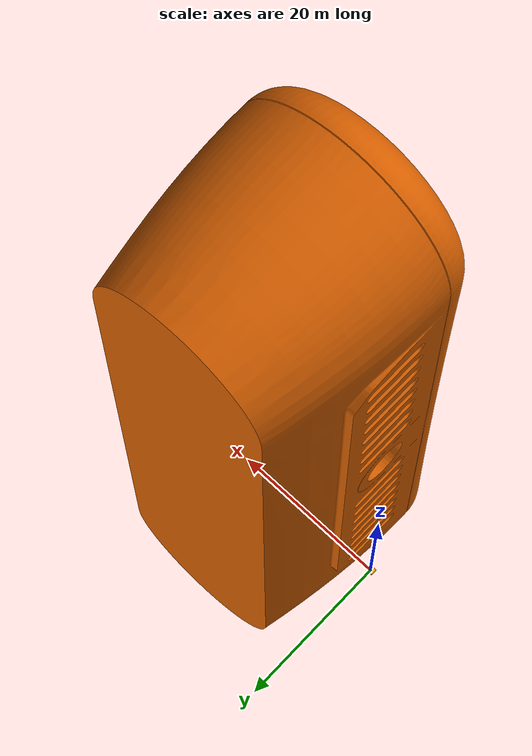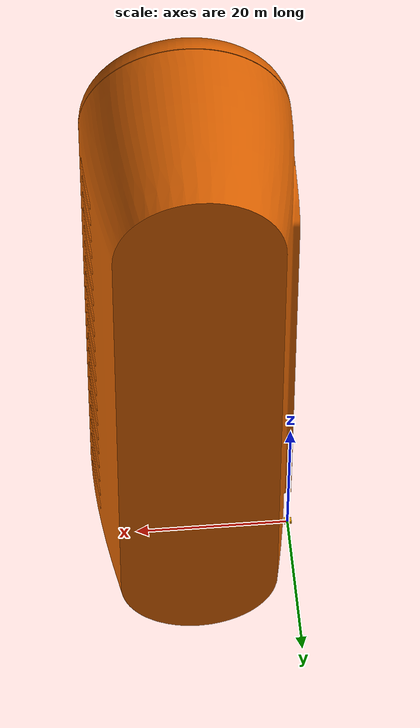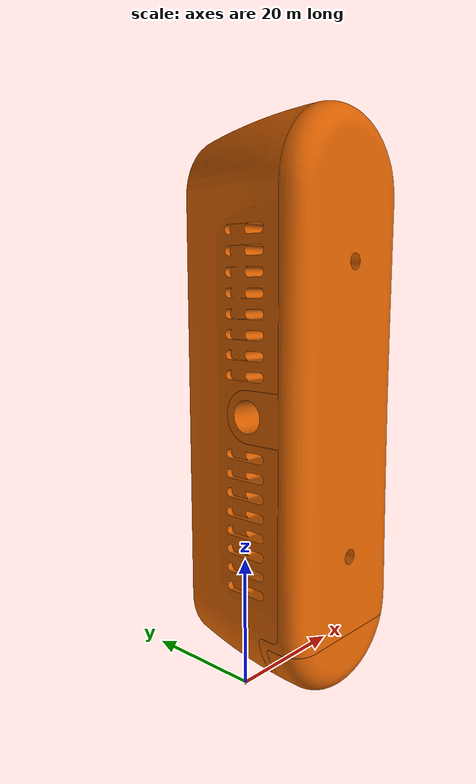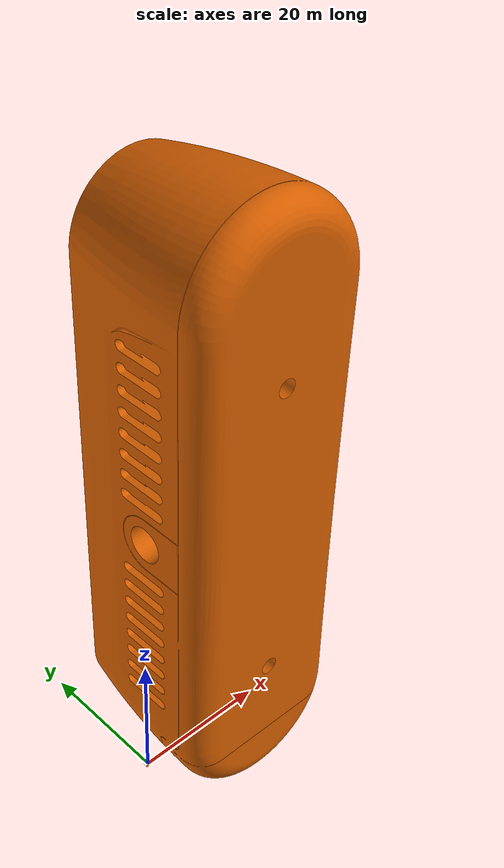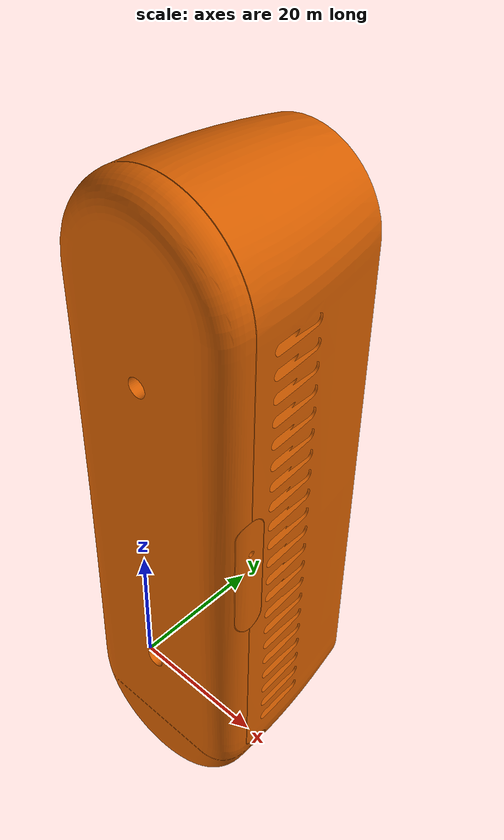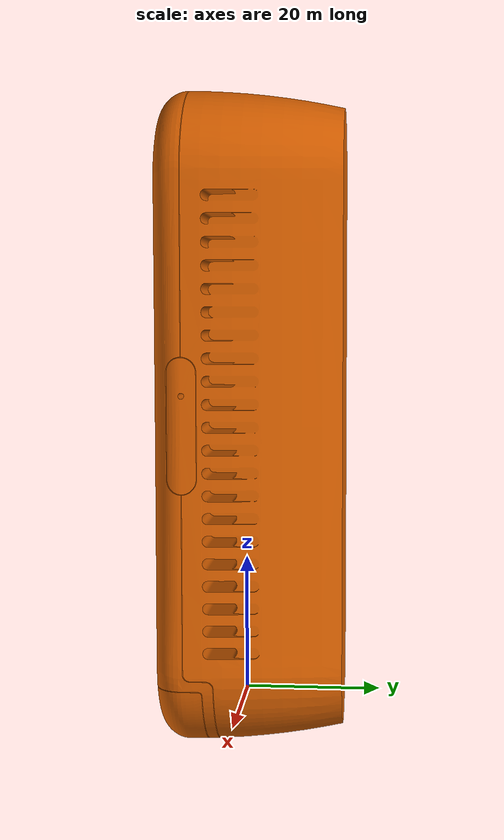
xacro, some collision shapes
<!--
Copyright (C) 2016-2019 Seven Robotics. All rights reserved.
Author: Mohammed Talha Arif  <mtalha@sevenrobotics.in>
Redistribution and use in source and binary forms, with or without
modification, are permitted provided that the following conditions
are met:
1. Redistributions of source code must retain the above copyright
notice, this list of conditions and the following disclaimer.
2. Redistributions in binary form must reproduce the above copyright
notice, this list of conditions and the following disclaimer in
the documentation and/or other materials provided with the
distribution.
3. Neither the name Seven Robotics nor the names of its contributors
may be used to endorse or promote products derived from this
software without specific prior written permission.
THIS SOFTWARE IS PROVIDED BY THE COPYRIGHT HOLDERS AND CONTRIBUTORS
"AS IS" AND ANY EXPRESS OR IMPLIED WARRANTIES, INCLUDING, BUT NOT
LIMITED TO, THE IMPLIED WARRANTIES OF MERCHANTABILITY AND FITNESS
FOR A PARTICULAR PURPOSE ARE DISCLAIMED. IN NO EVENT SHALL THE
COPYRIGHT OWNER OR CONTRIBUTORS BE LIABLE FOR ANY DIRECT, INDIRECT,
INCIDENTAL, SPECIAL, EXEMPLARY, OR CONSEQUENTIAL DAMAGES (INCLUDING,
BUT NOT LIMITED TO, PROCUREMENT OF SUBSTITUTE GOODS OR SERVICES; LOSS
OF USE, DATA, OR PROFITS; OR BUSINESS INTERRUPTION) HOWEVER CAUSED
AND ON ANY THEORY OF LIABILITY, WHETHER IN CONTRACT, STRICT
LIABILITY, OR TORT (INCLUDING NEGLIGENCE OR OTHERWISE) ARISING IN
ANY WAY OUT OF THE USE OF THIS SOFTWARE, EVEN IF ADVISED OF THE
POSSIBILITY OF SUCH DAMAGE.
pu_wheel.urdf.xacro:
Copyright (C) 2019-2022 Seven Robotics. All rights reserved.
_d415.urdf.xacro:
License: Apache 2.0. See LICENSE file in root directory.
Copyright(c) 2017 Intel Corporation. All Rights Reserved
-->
<?xml version="1.0"?>
<robot name="sr-100" xmlns:xacro="http://www.ros.org/wiki/xacro">

	<xacro:property name="PI" value="3.14159"/>
  <xacro:arg name="use_nominal_extrinsics" default="false"/>

	<xacro:include filename="$(find seven_robot_description)/urdf/sr-100.gazebo"/>
	<xacro:include filename="$(find seven_robot_description)/urdf/pu_wheel.urdf.xacro"/>
	<xacro:include filename="$(find seven_robot_description)/urdf/_d415.urdf.xacro"/>
	<xacro:include filename="$(find seven_robot_description)/urdf/_d415.gazebo.xacro"/>
	<xacro:include filename="$(find seven_robot_description)/urdf/sick_lms1xx.urdf.xacro"/>
	<xacro:include filename="$(find seven_robot_description)/urdf/caster_wheel.urdf.xacro"/>
	<xacro:include filename="$(find seven_robot_description)/urdf/sonarMount.urdf.xacro"/>
	<xacro:include filename="$(find seven_robot_description)/urdf/sonar.urdf.xacro"/>

	<xacro:arg name="robot_namespace" default="/" />
	<xacro:arg name="camera_name" default="sensor_d415"/>
	<xacro:property name="base_size_x" value="0.97923"/>
	<xacro:property name="base_size_y" value="0.77916"/>
	<xacro:property name="base_size_z" value="0.3305"/>
	<xacro:property name="base_clearance" value="0.03368"/>

	<xacro:property name="wheel_base" value="0.3440"/>
	<xacro:property name="wheel_vertical_offset" value="0.10687"/>

	<xacro:property name="wheel_width" value="0.04"/>
	<xacro:property name="wheel_radius" value="0.075"/>

	<link name="base_link">
    <visual>
			<origin rpy="0 0 0" xyz="0 0 0"/>
			<geometry>
				<mesh filename="package://seven_robot_description/meshes/mvpBASE1.dae"/>
			</geometry>
		</visual>

		<collision>
		 <origin xyz="0 0 0.204528" rpy="0 0 0"/>
		 <geometry>
			<box size="${base_size_x} ${base_size_y} 0.47057"/>
		 </geometry>
		</collision>
	</link>

	<link name="base_footprint"/>

	<joint name="base_footprint_joint" type="fixed">
		<origin xyz="0 0 0" rpy="0 0 0"/>
		<parent link="base_link"/>
		<child link="base_footprint"/>
	</joint>

	<link name="inertial_link">
		<inertial>
			<mass value="47.4"/>
			<origin xyz="-0.01687 -0.00816 0.37647" rpy="0 0 0"/>
			<inertia ixx="12585" ixy="-15.56" ixz="536.42" iyx="-15.56" iyy="806.894" iyz="-130.895" izx="-536.424" izy="-130.895" izz="5242.6"/>
		</inertial>
	</link>

	<joint name="inertial_joint" type="fixed">
		<origin xyz="0 0 0" rpy="0 0 0"/>
		<parent link="base_link"/>
		<child link="inertial_link"/>
	</joint>

	<link name="imu_link">
	</link>

	<joint name="base_imu_joint" type="fixed">
		<origin xyz="0 0 0.23680" rpy="0 0 0"/>
		<parent link="base_link"/>
		<child link="imu_link"/>
	</joint>

	<gazebo>
	 <plugin name="imu_controller" filename="libhector_gazebo_ros_imu.so">
	  <robotNamespace>/</robotNamespace>
	  <updateRate>50.0</updateRate>
    <bodyName>imu_link</bodyName>
	  <topicName>imu</topicName>
	  <accelDrift>0.005 0.005 0.005</accelDrift>
	  <accelGaussianNoise>0.005 0.005 0.005</accelGaussianNoise>
		<rateDrift>0.005 0.005 0.005 </rateDrift>
		<rateGaussianNoise>0.005 0.005 0.005 </rateGaussianNoise>
		<headingDrift>0.005</headingDrift>
		<headingGaussianNoise>0.005</headingGaussianNoise>
	 </plugin>
  </gazebo>

	<joint name="sick_base_joint" type="fixed">
	 <origin xyz="0.41121 -0.31152 0.18972" rpy="${PI} 0.0 ${-PI/4}"/>
   <parent link="base_link"/>
	 <child link="sick_mount_link"/>
	</joint>

 	<xacro:caster_wheel prefix="frontRight">
		<origin xyz="0.35015 -0.24985 0.10687" rpy="0 0 0"/>
	</xacro:caster_wheel>

	<xacro:caster_wheel prefix="rearRight">
		<origin xyz="-0.34985 -0.24985 0.10687" rpy="0 0 0"/>
	</xacro:caster_wheel>

	<xacro:caster_wheel prefix="frontLeft">
		<origin xyz="0.35015 0.25015 0.10687" rpy="0 0 0"/>
	</xacro:caster_wheel>

	<xacro:caster_wheel prefix="rearLeft">
		<origin xyz="-0.34985 0.25015 0.10687" rpy="0 0 0"/>
	</xacro:caster_wheel>

	<xacro:pu_wheel prefix="Right">
		<origin xyz="-0.00013 -0.32986 0.04280" rpy="${PI/2} 0 0"/>
	</xacro:pu_wheel>

	<xacro:pu_wheel prefix="Left">
		<origin xyz="-0.0013 0.33014 0.04280" rpy="-${PI/2} 0 0"/>
	</xacro:pu_wheel>

	<xacro:sick_lms_1xx name="sick" ros_topic="scan"/>

	<xacro:sensor_d415 parent="base_link" name="$(arg camera_name)" use_nominal_extrinsics="$(arg use_nominal_extrinsics)">
		<origin xyz="0.42720 0.005 0.36786" rpy="0 0 0"/>
	</xacro:sensor_d415>

	<xacro:gazebo_d435 camera_name="$(arg camera_name)" reference_link="$(arg camera_name)_link" topics_ns="/" depth_optical_frame="$(arg camera_name)_depth_optical_frame" color_optical_frame="$(arg camera_name)_color_optical_frame" infrared1_optical_frame="$(arg camera_name)_infrared1_optical_frame" infrared2_optical_frame="$(arg camera_name)_infrared2_optical_frame"/>

	<xacro:sonarMount parent="base_link">
    <origin xyz="0.42915 -0.00015 0.06192" rpy="0 0 0"/>
	</xacro:sonarMount>

	<xacro:sonar prefix="1" parent="base_link">
	  <origin xyz="0.45103 -0.03362 0.08181" rpy="0 0 -${PI/6}"/>
	</xacro:sonar>

  <xacro:sonar prefix="2" parent="base_link">
	  <origin xyz="0.46134 -0.01474 0.08207" rpy="0 0 -${PI/12}"/>
	</xacro:sonar>

 	<xacro:sonar prefix="3" parent="base_link">
	  <origin xyz="0.46134 0.01506 0.08185" rpy="0 0 ${PI/12}"/>
	</xacro:sonar>

 	<xacro:sonar prefix="4" parent="base_link">
	  <origin xyz="0.45103 -0.03417 0.08152" rpy="0 0 ${PI/6}"/>
	</xacro:sonar>
</robot>

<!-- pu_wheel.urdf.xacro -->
<robot xmlns:xacro="http://www.ros.org/wiki/xacro" name="pu_wheel">

	<xacro:macro name="pu_wheel" params="*joint_pose prefix">
		<link name=" ${prefix}_link">
			<inertial>
				<mass value="1.900"/>
				<origin xyz="0 0 0"/>
				<inertia ixx="0.002559" ixy="0" ixz="0" iyx="0" iyy="0.002559" iyz="0" izx="0" izy="0" izz="0.002396"/>
			</inertial>

			<visual>
				<origin xyz="0 0 0" rpy="0 0 0"/>
				<geometry>
					<mesh filename="package://seven_robot_description/meshes/PU_WHEEL.dae"/>
				</geometry>
			</visual>

			<collision>
				<origin xyz="0 0 0" rpy="0 0 0"/>
				<geometry>
			 		<cylinder radius="${wheel_radius}" length="${wheel_width}"/>
				</geometry>
			</collision>
		</link>

		<joint name="${prefix}_joint" type="continuous">
			<parent link="base_link"/>
			<child link=" ${prefix}_link"/>
			<xacro:insert_block name="joint_pose"/>
			<xacro:if value="${prefix == 'Right'}">
				<axis xyz="0 0 -1" rpy="0 0 0"/>
			</xacro:if>
			<xacro:if value="${prefix == 'Left'}">
			 <axis xyz="0 0 1" rpy="0 0 0"/>
			</xacro:if>
		</joint>

		<transmission name=" ${prefix}_wheeltrans" type="SimpleTransmission">
			<type>transmission_interface/SimpleTransmission</type>
			<actuator name=" ${prefix}_motor">
				<mechanicalReduction>2</mechanicalReduction>
			</actuator>
			<joint name="$${prefix}_joint">
				<hardwareInterface>hardware_interface/VelocityJointInterface</hardwareInterface>
			</joint>
		</transmission>

	</xacro:macro>
</robot>

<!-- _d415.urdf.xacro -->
<robot name="sensor_d415" xmlns:xacro="http://www.ros.org/wiki/xacro">
  <!-- Includes -->
  <xacro:include filename="$(find seven_robot_description)/urdf/_materials.urdf.xacro" />

  <xacro:macro name="sensor_d415" params="parent *origin  name:=camera  use_nominal_extrinsics:=false">
    <xacro:property name="M_PI" value="3.1415926535897931" />

    <!-- The following values are approximate, and the camera node
     publishing TF values with actual calibrated camera extrinsic values -->
    <xacro:property name="d415_cam_depth_to_infra1_offset" value="0.0"/>
    <xacro:property name="d415_cam_depth_to_infra2_offset" value="-0.055"/>
    <xacro:property name="d415_cam_depth_to_color_offset" value="0.015"/>

    <!-- The following values model the aluminum peripherial case for the
  	d415 camera, with the camera joint represented by the actual
  	peripherial camera tripod mount -->
    <xacro:property name="d415_cam_width" value="0.099"/>
    <xacro:property name="d415_cam_height" value="0.023"/>
    <xacro:property name="d415_cam_depth" value="0.02005"/>
    <xacro:property name="d415_cam_mount_from_center_offset" value="0.00987"/>

    <!-- The following offset is relative the the physical d415 camera peripherial
  	camera tripod mount -->
    <xacro:property name="d415_cam_depth_px" value="${d415_cam_mount_from_center_offset}"/>
    <xacro:property name="d415_cam_depth_py" value="0.020"/>
    <xacro:property name="d415_cam_depth_pz" value="${d415_cam_height/2}"/>

    <!-- camera body, with origin at bottom screw mount -->
    <joint name="${name}_joint" type="fixed">
      <xacro:insert_block name="origin" />
      <parent link="${parent}"/>
      <child link="${name}_bottom_screw_frame" />
    </joint>

    <link name="${name}_bottom_screw_frame"/>

    <joint name="${name}_link_joint" type="fixed">
      <origin xyz="0 ${d415_cam_depth_py} ${d415_cam_depth_pz}" rpy="0 0 0"/>
      <parent link="${name}_bottom_screw_frame"/>
      <child link="${name}_link" />
    </joint>

    <link name="${name}_link">
      <visual>
      <origin xyz="${d415_cam_mount_from_center_offset} ${-d415_cam_depth_py} 0" rpy="${M_PI/2} 0 ${M_PI/2}"/>
        <geometry>
	         <mesh filename="package://seven_robot_description/meshes/d415.stl" />
        </geometry>
        <material name="aluminum"/>
      </visual>
      <collision>
        <origin xyz="0 ${-d415_cam_depth_py} 0" rpy="0 0 0"/>
        <geometry>
        <box size="${d415_cam_depth} ${d415_cam_width} ${d415_cam_height}"/>
        </geometry>
      </collision>
      <inertial>
        <!-- The following are not reliable values, and should not be used for modeling -->
        <mass value="0.564" />
        <origin xyz="0 0 0" />
        <inertia ixx="0.003881243" ixy="0.0" ixz="0.0" iyy="0.000498940" iyz="0.0" izz="0.003879257" />
      </inertial>
    </link>

    <!-- Use the nominal extrinsics between camera frames if the calibrated extrinsics aren't being published. e.g. running the device in simulation  -->
    <xacro:if value="${use_nominal_extrinsics}">
      <!-- camera depth joints and links -->
      <joint name="${name}_depth_joint" type="fixed">
        <origin xyz="0 0 0" rpy="0 0 0"/>
        <parent link="${name}_link"/>
        <child link="${name}_depth_frame" />
      </joint>
      <link name="${name}_depth_frame"/>

      <joint name="${name}_depth_optical_joint" type="fixed">
        <origin xyz="0 0 0" rpy="${-M_PI/2} 0 ${-M_PI/2}" />
        <parent link="${name}_depth_frame" />
        <child link="${name}_depth_optical_frame" />
      </joint>
      <link name="${name}_depth_optical_frame"/>

      <!-- camera left IR joints and links -->
      <joint name="${name}_infra1_joint" type="fixed">
        <origin xyz="0 ${d415_cam_depth_to_infra1_offset} 0" rpy="0 0 0" />
        <parent link="${name}_link" />
        <child link="${name}_infra1_frame" />
      </joint>
      <link name="${name}_infra1_frame"/>

      <joint name="${name}_infra1_optical_joint" type="fixed">
        <origin xyz="0 0 0" rpy="${-M_PI/2} 0 ${-M_PI/2}" />
        <parent link="${name}_infra1_frame" />
        <child link="${name}_infra1_optical_frame" />
      </joint>
      <link name="${name}_infra1_optical_frame"/>

      <!-- camera right IR joints and links -->
      <joint name="${name}_infra2_joint" type="fixed">
        <origin xyz="0 ${d415_cam_depth_to_infra2_offset} 0" rpy="0 0 0" />
        <parent link="${name}_link" />
        <child link="${name}_infra2_frame" />
      </joint>
      <link name="${name}_infra2_frame"/>

      <joint name="${name}_infra2_optical_joint" type="fixed">
        <origin xyz="0 0 0" rpy="${-M_PI/2} 0 ${-M_PI/2}" />
        <parent link="${name}_infra2_frame" />
        <child link="${name}_infra2_optical_frame" />
      </joint>
      <link name="${name}_infra2_optical_frame"/>

      <!-- camera color joints and links -->
      <joint name="${name}_color_joint" type="fixed">
        <origin xyz="0 ${d415_cam_depth_to_color_offset} 0" rpy="0 0 0" />
        <parent link="${name}_link" />
        <child link="${name}_color_frame" />
      </joint>
      <link name="${name}_color_frame"/>

      <joint name="${name}_color_optical_joint" type="fixed">
        <origin xyz="0 0 0" rpy="${-M_PI/2} 0 ${-M_PI/2}" />
        <parent link="${name}_color_frame" />
        <child link="${name}_color_optical_frame" />
      </joint>
      <link name="${name}_color_optical_frame"/>
    </xacro:if>
  </xacro:macro>
</robot>

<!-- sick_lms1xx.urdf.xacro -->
<robot xmlns:controller="http://playerstage.sourceforge.net/gazebo/xmlschema/#controller"
  xmlns:interface="http://playerstage.sourceforge.net/gazebo/xmlschema/#interface"
  xmlns:sensor="http://playerstage.sourceforge.net/gazebo/xmlschema/#sensor"
  xmlns:xacro="http://www.ros.org/wiki/xacro">

  <xacro:macro name="sick_lms_1xx" params="name ros_topic">
    <xacro:sick_lms_1 name="${name}" ros_topic="${ros_topic}"
      length="0.105636" width="0.102301" height="0.161782" mass="1.1" x_offset="0.0" z_offset="0"
      min_range="0.5" max_range="20.0"/>
  </xacro:macro>

  <xacro:macro name="sick_lms_1" params="name ros_topic length width height mass x_offset z_offset min_range max_range">
    <link name="${name}_mount_link">
      <visual>
        <geometry>
          <mesh filename="package://seven_robot_description/meshes/LMS1xx_small.dae" />
        </geometry>
        <material name="blue" >
          <color rgba="0 0 1 1" />
        </material>
      </visual>
      <collision>
        <geometry>
          <mesh filename="package://seven_robot_description/meshes/LMS1xx_collision.stl" />
        </geometry>
      </collision>
      <inertial>
        <mass value="${mass}" />
        <origin xyz="${x_offset} 0 ${z_offset}" />
        <inertia ixx="${0.0833333 * mass * (width * width + height * height)}" ixy="0.0" ixz="0.0"
          iyy="${0.0833333 * mass * (length * length + height * height)}" iyz="0.0"
          izz="${0.0833333 * mass * (length * length + width * width)}" />
      </inertial>
    </link>

    <joint name="${name}_joint" type="fixed">
      <parent link="${name}_mount_link" />
      <child link="${name}_laser" />
      <origin rpy="0 0 0" xyz="0.0 0 0.0"/>
    </joint>

    <link name="${name}_laser">
      <inertial>
        <mass value="0.001" />
        <origin xyz="0 0 0" />
        <inertia ixx="0.000001" ixy="0.0" ixz="0.0"
          iyy="0.000001" iyz="0.0" izz="0.000001" />
      </inertial>
    </link>
    <xacro:sick_lms_1_laser_gazebo_v0 name="${name}" link="${name}_laser" ros_topic="${ros_topic}" update_rate="15.0" min_angle="-2.357" max_angle="2.357" min_range="${min_range}" max_range="${max_range}"/>
  </xacro:macro>

  <xacro:macro name="sick_lms_1_laser_gazebo_v0" params="name link ros_topic update_rate min_angle max_angle min_range max_range">
    <gazebo reference="${link}">
      <material value="Gazebo/Blue" />
      <sensor type="ray" name="${name}">
        <always_on>true</always_on>
        <update_rate>${update_rate}</update_rate>
        <pose>0 0 0 0 0 0</pose>
        <visualize>false</visualize>
        <ray>
          <scan>
            <horizontal>
              <samples>540</samples>
              <resolution>1</resolution>
              <min_angle>${min_angle}</min_angle>
              <max_angle>${max_angle}</max_angle>
            </horizontal>
          </scan>
          <range>
            <min>${min_range}</min>
            <max>${max_range}</max>
            <resolution>0.01</resolution>
          </range>
        </ray>
        <plugin name="gazebo_ros_${name}_controller" filename="libgazebo_ros_laser.so">
          <gaussianNoise>0.005</gaussianNoise>
          <alwaysOn>true</alwaysOn>
          <updateRate>${update_rate}</updateRate>
          <topicName>${ros_topic}</topicName>
          <frameName>${link}</frameName>
        </plugin>
      </sensor>
    </gazebo>
  </xacro:macro>
</robot>

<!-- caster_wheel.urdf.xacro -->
<robot xmlns:xacro="http://www.ros.org/wiki/xacro" name="caster_wheel">

	<xacro:macro name="caster_wheel" params="*joint_pose prefix">
		<link name=" ${prefix}_link">
			<inertial>
				<mass value="1.900"/>
				<origin xyz="0 0 0"/>
				<inertia ixx="0.002559" ixy="0" ixz="0" iyx="0" iyy="0.002559" iyz="0" izx="0" izy="0" izz="0.002396"/>
			</inertial>

			<visual>
				<origin xyz="0 0 0" rpy="0 0 0"/>
				<geometry>
					<mesh filename="package://seven_robot_description/meshes/caster.dae"/>
				</geometry>
			</visual>

			<collision>
				<origin xyz="0 0 0" rpy="0 0 0"/>
				<geometry>
			 		<cylinder radius="${wheel_radius}" length="${wheel_width}"/>
				</geometry>
			</collision>
		</link>

		<joint name="${prefix}_joint" type="continuous">
			<parent link="base_link"/>
			<child link=" ${prefix}_link"/>
			<xacro:insert_block name="joint_pose"/>
			<axis xyz="0 0 1" rpy="0 0 0"/>
		</joint>

	</xacro:macro>
</robot>

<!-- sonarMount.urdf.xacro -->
<robot xmlns:xacro="http://www.ros.org/wiki/xacro" name="sonarMount">

	<xacro:macro name="sonarMount" params="*joint_pose parent">
		<link name="sonarMount_link">
			<inertial>
				<mass value=".0900"/>
				<origin xyz="0 0 0"/>
				<inertia ixx="0.0002559" ixy="0" ixz="0" iyx="0" iyy="0.0002559" iyz="0" izx="0" izy="0" izz="0.0002396"/>
			</inertial>

			<visual>
				<origin xyz="0 0 0" rpy="0 0 0"/>
				<geometry>
					<mesh filename="package://seven_robot_description/meshes/sonarMount.dae"/>
				</geometry>
			</visual>

			<collision>
			 <origin xyz="0 0 0" rpy="0 0 0"/>
			 <geometry>
				 <box size="0.036 0.120 0.040"/>
			 </geometry>
			</collision>

    </link>

		<joint name="sonarMount_joint" type="fixed">
			<parent link="${parent}"/>
			<child link="sonarMount_link"/>
			<xacro:insert_block name="joint_pose"/>
		</joint>

	</xacro:macro>
</robot>

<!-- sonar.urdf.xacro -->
<robot xmlns:xacro="http://www.ros.org/wiki/xacro" name="sonar">

	<xacro:macro name="sonar" params="*joint_pose prefix parent">
		<link name=" ${prefix}_link">
			<inertial>
				<mass value=".0900"/>
				<origin xyz="0 0 0"/>
				<inertia ixx="0.0002559" ixy="0" ixz="0" iyx="0" iyy="0.0002559" iyz="0" izx="0" izy="0" izz="0.0002396"/>
			</inertial>

			<visual>
				<origin xyz="0 0 0" rpy="0 0 0"/>
				<geometry>
					<mesh filename="package://seven_robot_description/meshes/sonar.dae"/>
				</geometry>
			</visual>

		</link>

		<joint name="${prefix}_joint" type="fixed">
			<parent link="${parent}"/>
			<child link=" ${prefix}_link"/>
			<xacro:insert_block name="joint_pose"/>
		</joint>

	</xacro:macro>
</robot>
